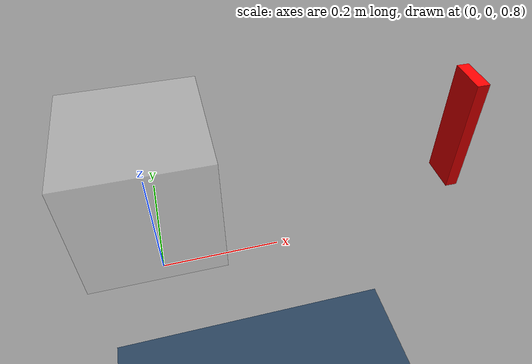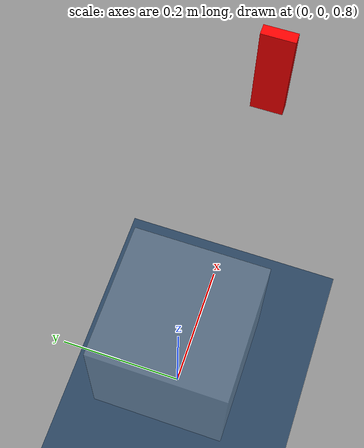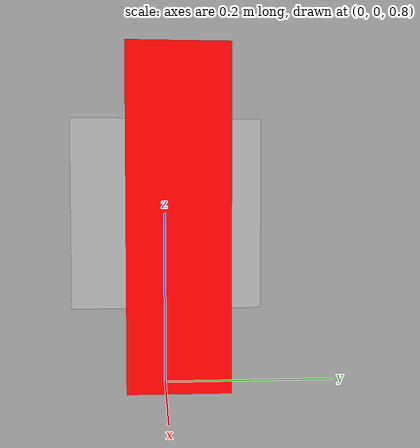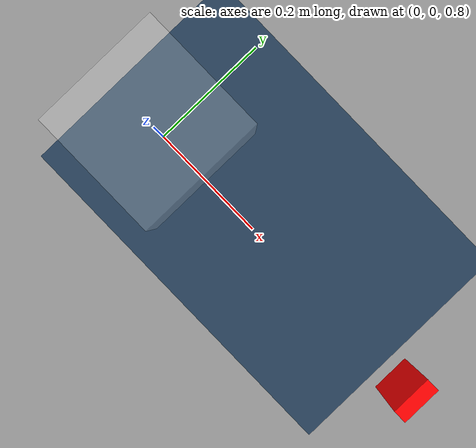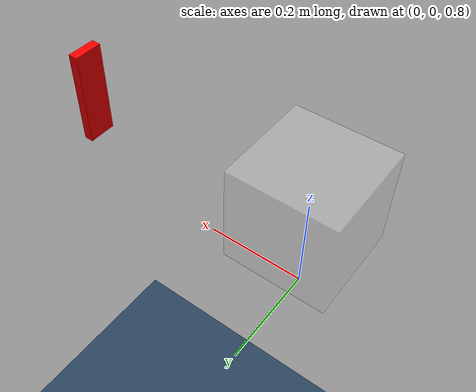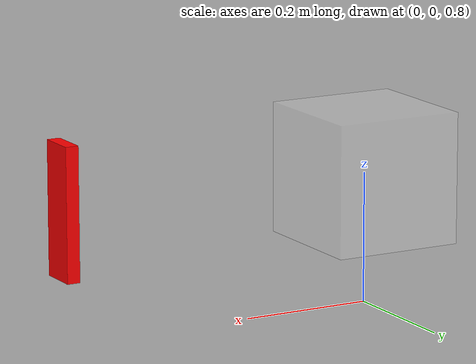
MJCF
<mujoco model="free_camera">
  <option integrator="RK4" solver="Newton" gravity="0 0 0"/>
  <compiler angle="radian" meshdir="../meshes" texturedir="../textures/"/>

  <visual>
    <global offwidth="1920" offheight="1080"/>
    <quality shadowsize="4096" offsamples="4"/>
    <headlight diffuse='0.6 0.6 0.6' ambient='.3 .3 .3' specular='0 0 0'/>
    <scale com="0.05" camera="0.06" framelength="0.5" framewidth="0.02" forcewidth="0.1" contactwidth="0.01" contactheight="0.05"/>
  </visual>

  <asset>
    <texture type='2d' name='groundplane' builtin='checker' mark='edge' rgb1='0.2 0.3 0.4' rgb2='0.1 0.2 0.3' markrgb='0.8 0.8 0.8' width='300' height='300'/>
    <material name='groundplane' texture='groundplane' texuniform='true' texrepeat='5 5' reflectance='0.2'/>
  </asset>

  <worldbody>
    <camera name="eye_side" fovy="72.02" pos="0.5 0.5 0.947" xyaxes="0.415 -0.910 0.000 0.233 0.106 0.967"/>
    <light castshadow="false" directional='true' diffuse='.3 .3 .3' specular='0.3 0.3 0.3' pos='-1 -1 1' dir='1 1 -1'/>
    <light directional='true' diffuse='.3 .3 .3' specular='0.3 0.3 0.3' pos='0 0 1' dir='-1 1 -1'/>
    <light castshadow="false" directional='true' diffuse='.3 .3 .3' specular='0.3 0.3 0.3' pos='0 1 1' dir='0 -1 -1'/>
    <geom name='floor' type='plane' size='0 0 0.01' material='groundplane' pos='0 0 0'/>

    <body name="dummy_robot" pos="0 0 1">
      <body euler="0 -1.5708 -1.5708">
        <joint axis='-1 0 0' range="-1.5708 1.5708"/>
        <inertial pos="0 0 0" mass="0.001" diaginertia="1e-5 1e-5 1e-5"/>
        <camera name='_dummy_robot'/>
        <site name="dummy_robot" euler="3.1416 0 0" size='0.001' type='sphere'/>
      </body>
      <geom type="box" size="0.1 0.1 0.1" rgba="1 1 1 0.1"/>
    </body>

    <geom type="box" pos="0.5 0 1" size="0.01 0.03 0.1" rgba="1 0 0 1"/>

  </worldbody>

</mujoco>
